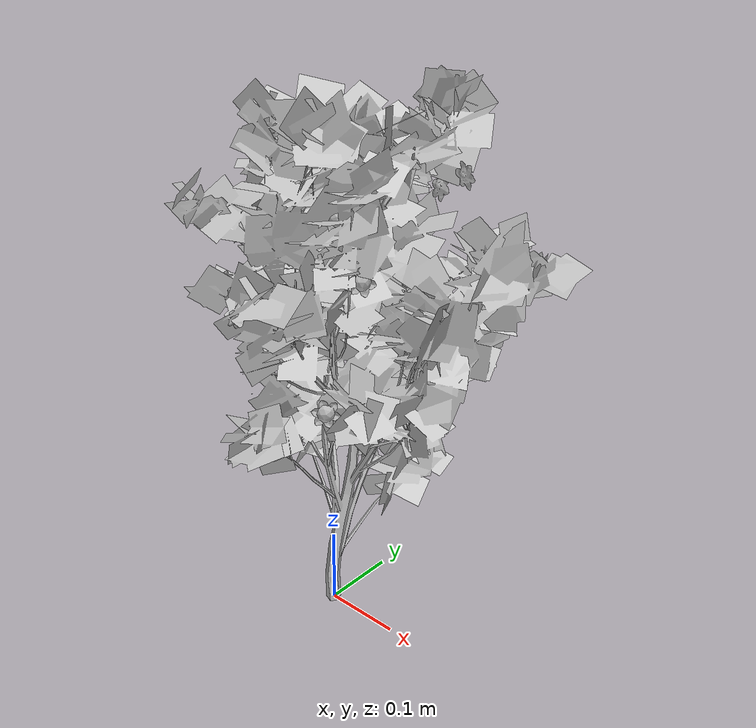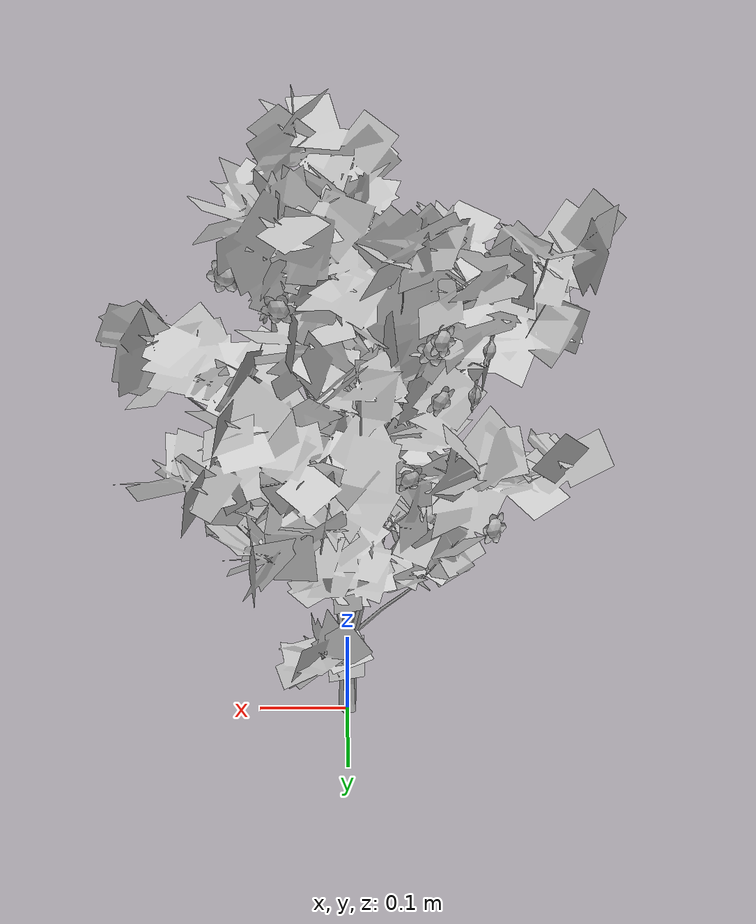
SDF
<?xml version="1.0" ?>
<sdf version="1.6">
  <model name="tree-flowers">
    <!--Skew-Seed:3806915885-->
    <static>true</static>
    <link name="link"/>
    <include>
      <uri>model://tree-mesh</uri>
      <pose>0 0 0 0 0 0</pose>
    </include>
    <joint name="tree_joint" type="fixed">
      <child>tree-mesh::link</child>
      <parent>link</parent>
    </joint>
    <include>
      <name>bramble_0</name>
      <uri>model://bramble</uri>
      <pose> -0.08406244079851603 -0.06952432461590638 0.4102526019182354 -3.245068029824476 1.7127343551652792 0.0</pose>
    </include>
    <joint name="flower_joint_0" type="fixed">
      <child>bramble_0::flower_link</child>
      <parent>link</parent>
    </joint>
    <include>
      <name>bramble_1</name>
      <uri>model://bramble</uri>
      <pose> -0.13906754972025337 0.12587711130267473 0.3268187597961916 -2.3479515461120215 1.7556056891426155 0.0</pose>
    </include>
    <joint name="flower_joint_1" type="fixed">
      <child>bramble_1::flower_link</child>
      <parent>link</parent>
    </joint>
    <include>
      <name>bramble_2</name>
      <uri>model://bramble</uri>
      <pose> 0.08729334671258812 0.07140033727616131 0.4243098466347872 0.010419355832571031 2.349039711013493 0.0</pose>
    </include>
    <joint name="flower_joint_2" type="fixed">
      <child>bramble_2::flower_link</child>
      <parent>link</parent>
    </joint>
    <include>
      <name>bramble_3</name>
      <uri>model://bramble</uri>
      <pose> -0.08432214030855566 0.11670301908555243 0.5239279199155682 -2.33067392868545 1.6007098150971926 0.0</pose>
    </include>
    <joint name="flower_joint_3" type="fixed">
      <child>bramble_3::flower_link</child>
      <parent>link</parent>
    </joint>
    <include>
      <name>bramble_4</name>
      <uri>model://bramble</uri>
      <pose> -0.08420643500868222 0.12054952434478018 0.4654430218375637 -2.3275481485737206 1.2703499560021196 0.0</pose>
    </include>
    <joint name="flower_joint_4" type="fixed">
      <child>bramble_4::flower_link</child>
      <parent>link</parent>
    </joint>
    <include>
      <name>bramble_5</name>
      <uri>model://bramble</uri>
      <pose> 0.10815515394493755 0.10123152330402792 0.5821401242905883 -1.3128384648179 1.0906222169157793 0.0</pose>
    </include>
    <joint name="flower_joint_5" type="fixed">
      <child>bramble_5::flower_link</child>
      <parent>link</parent>
    </joint>
    <include>
      <name>bramble_6</name>
      <uri>model://bramble</uri>
      <pose> -0.09948660968482986 -0.0582709277890284 0.43336239823886474 -3.2488816573651285 1.8637761291728772 0.0</pose>
    </include>
    <joint name="flower_joint_6" type="fixed">
      <child>bramble_6::flower_link</child>
      <parent>link</parent>
    </joint>
    <include>
      <name>bramble_7</name>
      <uri>model://bramble</uri>
      <pose> 0.059772748501552286 -0.050040498579920725 0.5572505501750595 0.8648128780105286 0.8903982246486829 0.0</pose>
    </include>
    <joint name="flower_joint_7" type="fixed">
      <child>bramble_7::flower_link</child>
      <parent>link</parent>
    </joint>
    <include>
      <name>bramble_8</name>
      <uri>model://bramble</uri>
      <pose> -0.07795733795743583 0.07026676637789578 0.3049874369460475 -2.8138220488746435 2.2771667349668876 0.0</pose>
    </include>
    <joint name="flower_joint_8" type="fixed">
      <child>bramble_8::flower_link</child>
      <parent>link</parent>
    </joint>
    <include>
      <name>bramble_9</name>
      <uri>model://bramble</uri>
      <pose> -0.07961521293718075 0.08867741247075578 0.501365248675105 -1.8915773014036112 1.708364450129892 0.0</pose>
    </include>
    <joint name="flower_joint_9" type="fixed">
      <child>bramble_9::flower_link</child>
      <parent>link</parent>
    </joint>
    <include>
      <name>bramble_10</name>
      <uri>model://bramble</uri>
      <pose> 0.07502254535566641 -0.030723810209434516 0.4849004496857171 0.39061339622839064 1.382699184698259 0.0</pose>
    </include>
    <joint name="flower_joint_10" type="fixed">
      <child>bramble_10::flower_link</child>
      <parent>link</parent>
    </joint>
    <include>
      <name>bramble_11</name>
      <uri>model://bramble</uri>
      <pose> 0.06001214622860804 0.11964887346168049 0.5586388613539781 -1.2737398309667114 2.223238254645452 0.0</pose>
    </include>
    <joint name="flower_joint_11" type="fixed">
      <child>bramble_11::flower_link</child>
      <parent>link</parent>
    </joint>
    <include>
      <name>bramble_12</name>
      <uri>model://bramble</uri>
      <pose> -0.12908963032896853 -0.05610598239614174 0.43824517076045344 -2.9889900747889566 2.1409148110950604 0.0</pose>
    </include>
    <joint name="flower_joint_12" type="fixed">
      <child>bramble_12::flower_link</child>
      <parent>link</parent>
    </joint>
    <include>
      <name>bramble_13</name>
      <uri>model://bramble</uri>
      <pose> -0.11414694614753254 0.12096160988566591 0.4688637619741851 -3.031635649865823 1.473542989052927 0.0</pose>
    </include>
    <joint name="flower_joint_13" type="fixed">
      <child>bramble_13::flower_link</child>
      <parent>link</parent>
    </joint>
    <include>
      <name>bramble_14</name>
      <uri>model://bramble</uri>
      <pose> 0.0533873082313252 -0.06664647889730195 0.3292895726969757 0.6791578166652352 1.2671766016093158 0.0</pose>
    </include>
    <joint name="flower_joint_14" type="fixed">
      <child>bramble_14::flower_link</child>
      <parent>link</parent>
    </joint>
    <include>
      <name>bramble_15</name>
      <uri>model://bramble</uri>
      <pose> -0.06021324054631487 0.08390161266537065 0.3593837819391861 -2.0787322164425106 0.9082562380776669 0.0</pose>
    </include>
    <joint name="flower_joint_15" type="fixed">
      <child>bramble_15::flower_link</child>
      <parent>link</parent>
    </joint>
    <include>
      <name>bramble_16</name>
      <uri>model://bramble</uri>
      <pose> -0.1305419101236774 0.07693859942976315 0.49380699145354023 -2.8269699010465508 1.488859046113589 0.0</pose>
    </include>
    <joint name="flower_joint_16" type="fixed">
      <child>bramble_16::flower_link</child>
      <parent>link</parent>
    </joint>
  </model>
</sdf>

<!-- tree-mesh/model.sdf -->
<sdf version="1.6">
  <model name="tree-mesh">
    <static>true</static>
    <link name="link">

      <collision name="collision">
        <geometry>
          <mesh>
            <uri>model://tree-mesh/meshes/new_tree.dae</uri>
            <scale>0.0625 0.0625 0.0625</scale>
          </mesh>
        </geometry>
      </collision>

      <!-- simplified collision for sake of speed since leaves shouldn't be blocking anyway -->

      <visual name="leaves">
        <geometry>
          <mesh>
            <uri>model://tree-mesh/meshes/leaves.dae</uri>
            <scale>0.0325 0.0325 0.0325</scale>
          </mesh>
        </geometry>
        <material>
          <script>
            <uri>model://tree-mesh/materials/scripts/</uri>
            <uri>model://tree-mesh/materials/textures/</uri>
            <name>NewTree/Branch</name>
          </script>
        </material>
      </visual>
      <visual name="bark">
        <geometry>
          <mesh>
            <uri>model://tree-mesh/meshes/bark.dae</uri>
            <scale>0.0325 0.0325 0.0325</scale>
          </mesh>
        </geometry>
        <material>
          <script>
            <uri>model://tree-mesh/materials/scripts/</uri>
            <uri>model://tree-mesh/materials/textures/</uri>
            <name>NewTree/Bark</name>
          </script>
        </material>
      </visual>
    </link>
  </model>
</sdf>

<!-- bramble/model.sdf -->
<sdf version="1.6">
  <model name="bramble">
    <static>true</static>
    <link name="flower_link">
      <collision name="body_collision">
        <geometry>
          <mesh>
            <uri>model://bramble/meshes/bramble.dae</uri>
            <scale>0.2 0.2 0.2</scale>
          </mesh>
        </geometry>
      </collision>
      <visual name="petals">
        <geometry>
          <mesh>
            <uri>model://bramble/meshes/bramble.dae</uri>
            <scale>0.2 0.2 0.2</scale>
            <submesh>
              <name>petal</name>
            </submesh>
          </mesh>
        </geometry>
        <material>
          <script>
            <uri>model://bramble/materials/scripts/</uri>
            <uri>model://bramble/materials/textures/</uri>
            <name>Bramble/Petal</name>
          </script>
        </material>
      </visual>
      <visual name="carpel">
        <geometry>
          <mesh>
            <uri>model://bramble/meshes/bramble.dae</uri>
            <scale>0.2 0.2 0.2</scale>
            <submesh>
              <name>carpel</name>
            </submesh>
          </mesh>
        </geometry>
        <material>
          <script>
            <uri>model://bramble/materials/scripts/</uri>
            <uri>model://bramble/materials/textures/</uri>
            <name>Bramble/Carpel</name>
          </script>
        </material>
      </visual>
      <visual name="stamen">
        <geometry>
          <mesh>
            <uri>model://bramble/meshes/bramble.dae</uri>
            <scale>0.2 0.2 0.2</scale>
            <submesh>
              <name>stamen</name>
            </submesh>
          </mesh>
        </geometry>
        <material>
          <script>
            <uri>model://bramble/materials/scripts/</uri>
            <uri>model://bramble/materials/textures/</uri>
            <name>Bramble/Stamen</name>
          </script>
        </material>
      </visual>
    </link>
  </model>
</sdf>
